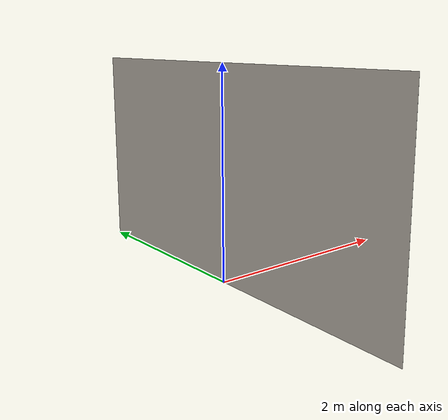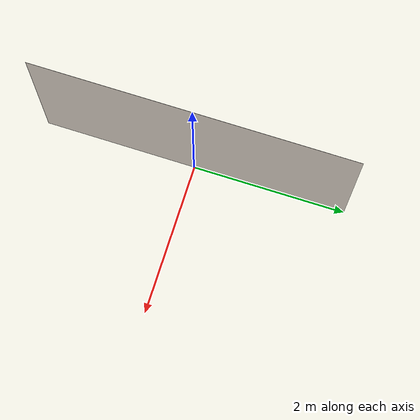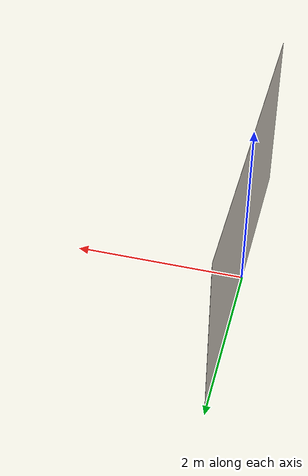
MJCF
<mujoco model="background">
  <compiler angle="radian" autolimits="true" texturedir="assets"/>

  <asset>
    <texture name="bg_tex" type="2d" file="lab_background.png"/>
    <material name="box_mat" texture="bg_tex"
              texuniform="false" emission="0.7"
              specular="0" shininess="0" reflectance="0"/>
  </asset>

  <worldbody>
    <body name="background" pos="0 0 1.0" euler="0 -1.5708 -1.5708">
      <geom name="bg_geom" type="plane" size="2 1 0.1" material="box_mat" contype="0" conaffinity="0"/>
    </body>
  </worldbody>
</mujoco>
